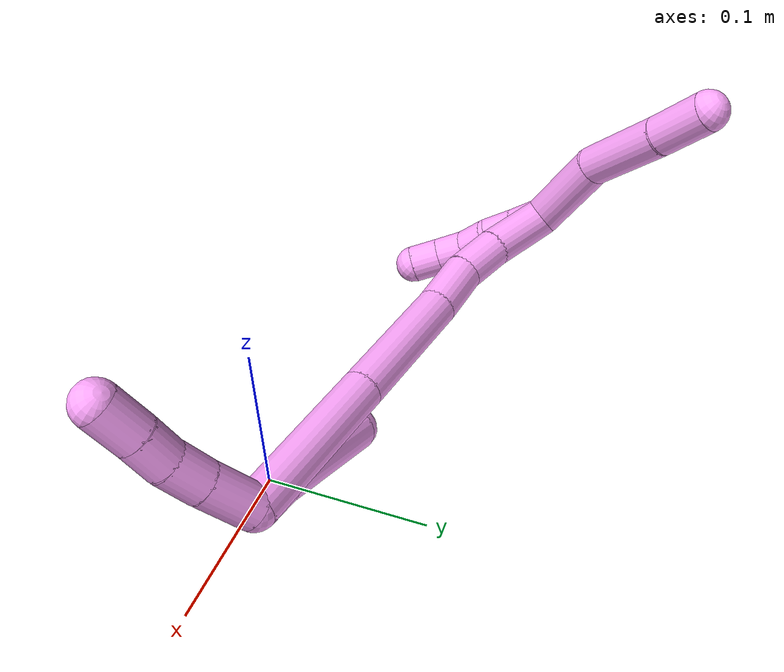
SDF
<sdf version="1.7">
 <world name="default">
  <model name="photoneo_s_sensor">
   <static>1</static>
   <pose>0 0 2 1.57079 1.57079 3.14159</pose>
   <link name="link">
    <inertial><mass>0.1</mass></inertial>
    <sensor name="sensor" type="depth">
     <update_rate>30</update_rate>
     <camera>
      <horizontal_fov>1.22</horizontal_fov>
      <image><width>1920</width><height>1200</height><format>B8G8R8</format></image>
      <clip><near>0.1</near><far>4</far></clip>
      <depth_camera><output>points</output></depth_camera>
     </camera>
     <plugin name="camera_plugin" filename="libgazebo_ros_depth_camera.so">
      <baseline>0.2</baseline>
      <alwaysOn>1</alwaysOn>
      <updateRate>0.0</updateRate>
      <cameraName>camera_ir</cameraName>
      <imageTopicName>/camera/color/image_raw</imageTopicName>
      <cameraInfoTopicName>/camera/color/camera_info</cameraInfoTopicName>
      <depthImageTopicName>/camera/depth/image_raw</depthImageTopicName>
      <depthImageCameraInfoTopicName>/camera/depth/camera_info</depthImageCameraInfoTopicName>
      <pointCloudTopicName>/camera/depth/points</pointCloudTopicName>
      <frameName>fr_optical</frameName>
      <pointCloudCutoff>0.1</pointCloudCutoff>
      <pointCloudCutoffMax>2.0</pointCloudCutoffMax>
      <distortionK1>0</distortionK1>
      <distortionK2>0</distortionK2>
      <distortionK3>0</distortionK3>
      <distortionT1>0</distortionT1>
      <distortionT2>0</distortionT2>
      <CxPrime>0</CxPrime>
      <Cx>0</Cx>
      <Cy>0</Cy>
      <focalLength>0</focalLength>
      <hackBaseline>0</hackBaseline>
     </plugin>
    </sensor>
   </link>
  </model>
  <model name="bin">
   <static>1</static>
   <link name="bottom">
    <collision name="collision-bottom">
     <pose>0 0 -0.01 0 -0 0</pose>
     <geometry><box><size>0.8 0.6 0.02</size></box></geometry>
     <surface>
      <friction><ode><mu>100</mu><mu2>100</mu2></ode></friction>
      <contact><collide_bitmask>65535</collide_bitmask></contact>
     </surface>
    </collision>
   </link>
   <link name="west_wall">
    <collision name="collision-west_wall">
     <pose>-0.41 0 0.1 0 -0 0</pose>
     <geometry><box><size>0.02 0.6 0.2</size></box></geometry>
     <surface>
      <friction><ode><mu>100</mu><mu2>100</mu2></ode></friction>
      <contact><collide_bitmask>65535</collide_bitmask></contact>
     </surface>
    </collision>
   </link>
   <link name="east_wall">
    <collision name="collision-east_wall">
     <pose>0.41 0 0.1 0 -0 0</pose>
     <geometry><box><size>0.02 0.6 0.2</size></box></geometry>
     <surface>
      <friction><ode><mu>100</mu><mu2>100</mu2></ode></friction>
      <contact><collide_bitmask>65535</collide_bitmask></contact>
     </surface>
    </collision>
   </link>
   <link name="south_wall">
    <collision name="collision-south_wall">
     <pose>0 -0.31 0.1 0 -0 0</pose>
     <geometry><box><size>0.8 0.02 0.2</size></box></geometry>
     <surface>
      <friction><ode><mu>100</mu><mu2>100</mu2></ode></friction>
      <contact><collide_bitmask>65535</collide_bitmask></contact>
     </surface>
    </collision>
   </link>
   <link name="north_wall">
    <collision name="collision-north_wall">
     <pose>0 0.31 0.1 0 -0 0</pose>
     <geometry><box><size>0.8 0.02 0.2</size></box></geometry>
     <surface>
      <friction><ode><mu>100</mu><mu2>100</mu2></ode></friction>
      <contact><collide_bitmask>65535</collide_bitmask></contact>
     </surface>
    </collision>
   </link>
  </model>
  <model name="4">
   <static>0</static>
   <link name="4">
    <collision name="collision-cylinder-e_1_2_8">
     <pose>-0.000261 -9.6e-05 0.029581 0.003254 -0.008826 -1.4e-05</pose>
     <geometry><cylinder><radius>0.0125</radius><length>0.059165</length></cylinder></geometry>
     <surface>
      <friction><ode><mu>1.16</mu><mu2>1.16</mu2><slip1>0</slip1><slip2>0</slip2></ode></friction>
      <contact><ode><kp>1e+06</kp><kd>1</kd><max_vel>0</max_vel><min_depth>0.001</min_depth></ode></contact>
     </surface>
    </collision>
    <visual name="visual-cylinder-e_1_2_8">
     <pose>-0.000261 -9.6e-05 0.029581 0.003254 -0.008826 -1.4e-05</pose>
     <geometry><cylinder><radius>0.0125</radius><length>0.059165</length></cylinder></geometry>
     <material><ambient>1 0.65098 0.996078 1</ambient></material>
    </visual>
    <collision name="collision-cylinder-e_2_8_9">
     <pose>0.001993 0.007456 0.085998 -0.277656 0.089906 -0.012571</pose>
     <geometry><cylinder><radius>0.0125</radius><length>0.056036</length></cylinder></geometry>
     <surface>
      <friction><ode><mu>1.16</mu><mu2>1.16</mu2><slip1>0</slip1><slip2>0</slip2></ode></friction>
      <contact><ode><kp>1e+06</kp><kd>1</kd><max_vel>0</max_vel><min_depth>0.001</min_depth></ode></contact>
     </surface>
    </collision>
    <visual name="visual-cylinder-e_2_8_9">
     <pose>0.001993 0.007456 0.085998 -0.277656 0.089906 -0.012571</pose>
     <geometry><cylinder><radius>0.0125</radius><length>0.056036</length></cylinder></geometry>
     <material><ambient>1 0.65098 0.996078 1</ambient></material>
    </visual>
    <collision name="collision-cylinder-e_3_9_6">
     <pose>0.004448 0.019481 0.129675 -0.254205 -0.003488 0.000446</pose>
     <geometry><cylinder><radius>0.0125</radius><length>0.034799</length></cylinder></geometry>
     <surface>
      <friction><ode><mu>1.16</mu><mu2>1.16</mu2><slip1>0</slip1><slip2>0</slip2></ode></friction>
      <contact><ode><kp>1e+06</kp><kd>1</kd><max_vel>0</max_vel><min_depth>0.001</min_depth></ode></contact>
     </surface>
    </collision>
    <visual name="visual-cylinder-e_3_9_6">
     <pose>0.004448 0.019481 0.129675 -0.254205 -0.003488 0.000446</pose>
     <geometry><cylinder><radius>0.0125</radius><length>0.034799</length></cylinder></geometry>
     <material><ambient>1 0.65098 0.996078 1</ambient></material>
    </visual>
    <collision name="collision-cylinder-e_1_2_10">
     <pose>0.003826 -0.003535 -0.008536 2.74898 0.392606 1.57077</pose>
     <geometry><cylinder><radius>0.0125</radius><length>0.02</length></cylinder></geometry>
     <surface>
      <friction><ode><mu>1.16</mu><mu2>1.16</mu2><slip1>0</slip1><slip2>0</slip2></ode></friction>
      <contact><ode><kp>1e+06</kp><kd>1</kd><max_vel>0</max_vel><min_depth>0.001</min_depth></ode></contact>
     </surface>
    </collision>
    <visual name="visual-cylinder-e_1_2_10">
     <pose>0.003826 -0.003535 -0.008536 2.74898 0.392606 1.57077</pose>
     <geometry><cylinder><radius>0.0125</radius><length>0.02</length></cylinder></geometry>
     <material><ambient>1 0.65098 0.996078 1</ambient></material>
    </visual>
    <collision name="collision-cylinder-e_2_10_11">
     <pose>0.012136 -0.010981 -0.02511 2.68876 0.464977 1.5982</pose>
     <geometry><cylinder><radius>0.0125</radius><length>0.02</length></cylinder></geometry>
     <surface>
      <friction><ode><mu>1.16</mu><mu2>1.16</mu2><slip1>0</slip1><slip2>0</slip2></ode></friction>
      <contact><ode><kp>1e+06</kp><kd>1</kd><max_vel>0</max_vel><min_depth>0.001</min_depth></ode></contact>
     </surface>
    </collision>
    <visual name="visual-cylinder-e_2_10_11">
     <pose>0.012136 -0.010981 -0.02511 2.68876 0.464977 1.5982</pose>
     <geometry><cylinder><radius>0.0125</radius><length>0.02</length></cylinder></geometry>
     <material><ambient>1 0.65098 0.996078 1</ambient></material>
    </visual>
    <collision name="collision-cylinder-e_3_11_12">
     <pose>0.018872 -0.017392 -0.042564 2.88198 0.227106 1.43611</pose>
     <geometry><cylinder><radius>0.0125</radius><length>0.02</length></cylinder></geometry>
     <surface>
      <friction><ode><mu>1.16</mu><mu2>1.16</mu2><slip1>0</slip1><slip2>0</slip2></ode></friction>
      <contact><ode><kp>1e+06</kp><kd>1</kd><max_vel>0</max_vel><min_depth>0.001</min_depth></ode></contact>
     </surface>
    </collision>
    <visual name="visual-cylinder-e_3_11_12">
     <pose>0.018872 -0.017392 -0.042564 2.88198 0.227106 1.43611</pose>
     <geometry><cylinder><radius>0.0125</radius><length>0.02</length></cylinder></geometry>
     <material><ambient>1 0.65098 0.996078 1</ambient></material>
    </visual>
    <collision name="collision-cylinder-e_4_12_13">
     <pose>0.025427 -0.024217 -0.059904 2.64209 0.444871 1.45084</pose>
     <geometry><cylinder><radius>0.0125</radius><length>0.02</length></cylinder></geometry>
     <surface>
      <friction><ode><mu>1.16</mu><mu2>1.16</mu2><slip1>0</slip1><slip2>0</slip2></ode></friction>
      <contact><ode><kp>1e+06</kp><kd>1</kd><max_vel>0</max_vel><min_depth>0.001</min_depth></ode></contact>
     </surface>
    </collision>
    <visual name="visual-cylinder-e_4_12_13">
     <pose>0.025427 -0.024217 -0.059904 2.64209 0.444871 1.45084</pose>
     <geometry><cylinder><radius>0.0125</radius><length>0.02</length></cylinder></geometry>
     <material><ambient>1 0.65098 0.996078 1</ambient></material>
    </visual>
    <collision name="collision-cylinder-e_5_13_5">
     <pose>0.035678 -0.032933 -0.074561 2.5635 0.637048 1.67397</pose>
     <geometry><cylinder><radius>0.0125</radius><length>0.02</length></cylinder></geometry>
     <surface>
      <friction><ode><mu>1.16</mu><mu2>1.16</mu2><slip1>0</slip1><slip2>0</slip2></ode></friction>
      <contact><ode><kp>1e+06</kp><kd>1</kd><max_vel>0</max_vel><min_depth>0.001</min_depth></ode></contact>
     </surface>
    </collision>
    <visual name="visual-cylinder-e_5_13_5">
     <pose>0.035678 -0.032933 -0.074561 2.5635 0.637048 1.67397</pose>
     <geometry><cylinder><radius>0.0125</radius><length>0.02</length></cylinder></geometry>
     <material><ambient>1 0.65098 0.996078 1</ambient></material>
    </visual>
    <collision name="collision-cylinder-e_1_2_14">
     <pose>0.022306 -0.002567 -0.005411 2.69856 1.30848 2.57033</pose>
     <geometry><cylinder><radius>0.0125</radius><length>0.046192</length></cylinder></geometry>
     <surface>
      <friction><ode><mu>1.16</mu><mu2>1.16</mu2><slip1>0</slip1><slip2>0</slip2></ode></friction>
      <contact><ode><kp>1e+06</kp><kd>1</kd><max_vel>0</max_vel><min_depth>0.001</min_depth></ode></contact>
     </surface>
    </collision>
    <visual name="visual-cylinder-e_1_2_14">
     <pose>0.022306 -0.002567 -0.005411 2.69856 1.30848 2.57033</pose>
     <geometry><cylinder><radius>0.0125</radius><length>0.046192</length></cylinder></geometry>
     <material><ambient>1 0.65098 0.996078 1</ambient></material>
    </visual>
    <collision name="collision-cylinder-e_2_14_15">
     <pose>0.059463 -0.005469 -0.013778 3.02907 1.37307 3.00436</pose>
     <geometry><cylinder><radius>0.0125</radius><length>0.030292</length></cylinder></geometry>
     <surface>
      <friction><ode><mu>1.16</mu><mu2>1.16</mu2><slip1>0</slip1><slip2>0</slip2></ode></friction>
      <contact><ode><kp>1e+06</kp><kd>1</kd><max_vel>0</max_vel><min_depth>0.001</min_depth></ode></contact>
     </surface>
    </collision>
    <visual name="visual-cylinder-e_2_14_15">
     <pose>0.059463 -0.005469 -0.013778 3.02907 1.37307 3.00436</pose>
     <geometry><cylinder><radius>0.0125</radius><length>0.030292</length></cylinder></geometry>
     <material><ambient>1 0.65098 0.996078 1</ambient></material>
    </visual>
    <collision name="collision-cylinder-e_3_15_16">
     <pose>0.092187 -0.002788 -0.017524 -1.82672 1.39818 -1.65598</pose>
     <geometry><cylinder><radius>0.0125</radius><length>0.036285</length></cylinder></geometry>
     <surface>
      <friction><ode><mu>1.16</mu><mu2>1.16</mu2><slip1>0</slip1><slip2>0</slip2></ode></friction>
      <contact><ode><kp>1e+06</kp><kd>1</kd><max_vel>0</max_vel><min_depth>0.001</min_depth></ode></contact>
     </surface>
    </collision>
    <visual name="visual-cylinder-e_3_15_16">
     <pose>0.092187 -0.002788 -0.017524 -1.82672 1.39818 -1.65598</pose>
     <geometry><cylinder><radius>0.0125</radius><length>0.036285</length></cylinder></geometry>
     <material><ambient>1 0.65098 0.996078 1</ambient></material>
    </visual>
    <collision name="collision-cylinder-e_4_16_17">
     <pose>0.153164 0.004815 -0.017135 -1.31951 1.46132 -1.2149</pose>
     <geometry><cylinder><radius>0.0125</radius><length>0.086729</length></cylinder></geometry>
     <surface>
      <friction><ode><mu>1.16</mu><mu2>1.16</mu2><slip1>0</slip1><slip2>0</slip2></ode></friction>
      <contact><ode><kp>1e+06</kp><kd>1</kd><max_vel>0</max_vel><min_depth>0.001</min_depth></ode></contact>
     </surface>
    </collision>
    <visual name="visual-cylinder-e_4_16_17">
     <pose>0.153164 0.004815 -0.017135 -1.31951 1.46132 -1.2149</pose>
     <geometry><cylinder><radius>0.0125</radius><length>0.086729</length></cylinder></geometry>
     <material><ambient>1 0.65098 0.996078 1</ambient></material>
    </visual>
    <collision name="collision-cylinder-e_5_17_1">
     <pose>0.246226 0.014612 -0.014409 -1.28189 1.46246 -1.17962</pose>
     <geometry><cylinder><radius>0.0125</radius><length>0.100502</length></cylinder></geometry>
     <surface>
      <friction><ode><mu>1.16</mu><mu2>1.16</mu2><slip1>0</slip1><slip2>0</slip2></ode></friction>
      <contact><ode><kp>1e+06</kp><kd>1</kd><max_vel>0</max_vel><min_depth>0.001</min_depth></ode></contact>
     </surface>
    </collision>
    <visual name="visual-cylinder-e_5_17_1">
     <pose>0.246226 0.014612 -0.014409 -1.28189 1.46246 -1.17962</pose>
     <geometry><cylinder><radius>0.0125</radius><length>0.100502</length></cylinder></geometry>
     <material><ambient>1 0.65098 0.996078 1</ambient></material>
    </visual>
    <collision name="collision-cylinder-e_1_1_18">
     <pose>0.30476 0.00703 -0.007581 1.17932 0.554935 0.376602</pose>
     <geometry><cylinder><radius>0.0125</radius><length>0.03256</length></cylinder></geometry>
     <surface>
      <friction><ode><mu>1.16</mu><mu2>1.16</mu2><slip1>0</slip1><slip2>0</slip2></ode></friction>
      <contact><ode><kp>1e+06</kp><kd>1</kd><max_vel>0</max_vel><min_depth>0.001</min_depth></ode></contact>
     </surface>
    </collision>
    <visual name="visual-cylinder-e_1_1_18">
     <pose>0.30476 0.00703 -0.007581 1.17932 0.554935 0.376602</pose>
     <geometry><cylinder><radius>0.0125</radius><length>0.03256</length></cylinder></geometry>
     <material><ambient>1 0.65098 0.996078 1</ambient></material>
    </visual>
    <collision name="collision-cylinder-e_2_18_19">
     <pose>0.318639 -0.014712 0.001621 1.15778 0.496959 0.328668</pose>
     <geometry><cylinder><radius>0.0125</radius><length>0.022238</length></cylinder></geometry>
     <surface>
      <friction><ode><mu>1.16</mu><mu2>1.16</mu2><slip1>0</slip1><slip2>0</slip2></ode></friction>
      <contact><ode><kp>1e+06</kp><kd>1</kd><max_vel>0</max_vel><min_depth>0.001</min_depth></ode></contact>
     </surface>
    </collision>
    <visual name="visual-cylinder-e_2_18_19">
     <pose>0.318639 -0.014712 0.001621 1.15778 0.496959 0.328668</pose>
     <geometry><cylinder><radius>0.0125</radius><length>0.022238</length></cylinder></geometry>
     <material><ambient>1 0.65098 0.996078 1</ambient></material>
    </visual>
    <collision name="collision-cylinder-e_3_19_20">
     <pose>0.327506 -0.032065 0.010224 1.06252 0.355106 0.210109</pose>
     <geometry><cylinder><radius>0.0125</radius><length>0.020512</length></cylinder></geometry>
     <surface>
      <friction><ode><mu>1.16</mu><mu2>1.16</mu2><slip1>0</slip1><slip2>0</slip2></ode></friction>
      <contact><ode><kp>1e+06</kp><kd>1</kd><max_vel>0</max_vel><min_depth>0.001</min_depth></ode></contact>
     </surface>
    </collision>
    <visual name="visual-cylinder-e_3_19_20">
     <pose>0.327506 -0.032065 0.010224 1.06252 0.355106 0.210109</pose>
     <geometry><cylinder><radius>0.0125</radius><length>0.020512</length></cylinder></geometry>
     <material><ambient>1 0.65098 0.996078 1</ambient></material>
    </visual>
    <collision name="collision-cylinder-e_4_20_4">
     <pose>0.335671 -0.050743 0.019966 1.11317 0.381774 0.239319</pose>
     <geometry><cylinder><radius>0.0125</radius><length>0.02469</length></cylinder></geometry>
     <surface>
      <friction><ode><mu>1.16</mu><mu2>1.16</mu2><slip1>0</slip1><slip2>0</slip2></ode></friction>
      <contact><ode><kp>1e+06</kp><kd>1</kd><max_vel>0</max_vel><min_depth>0.001</min_depth></ode></contact>
     </surface>
    </collision>
    <visual name="visual-cylinder-e_4_20_4">
     <pose>0.335671 -0.050743 0.019966 1.11317 0.381774 0.239319</pose>
     <geometry><cylinder><radius>0.0125</radius><length>0.02469</length></cylinder></geometry>
     <material><ambient>1 0.65098 0.996078 1</ambient></material>
    </visual>
    <collision name="collision-cylinder-e_1_1_21">
     <pose>0.284669 0.01911 -0.01595 2.91561 -1.30215 -2.8459</pose>
     <geometry><cylinder><radius>0.0125</radius><length>0.023882</length></cylinder></geometry>
     <surface>
      <friction><ode><mu>1.16</mu><mu2>1.16</mu2><slip1>0</slip1><slip2>0</slip2></ode></friction>
      <contact><ode><kp>1e+06</kp><kd>1</kd><max_vel>0</max_vel><min_depth>0.001</min_depth></ode></contact>
     </surface>
    </collision>
    <visual name="visual-cylinder-e_1_1_21">
     <pose>0.284669 0.01911 -0.01595 2.91561 -1.30215 -2.8459</pose>
     <geometry><cylinder><radius>0.0125</radius><length>0.023882</length></cylinder></geometry>
     <material><ambient>1 0.65098 0.996078 1</ambient></material>
    </visual>
    <collision name="collision-cylinder-e_2_21_3">
     <pose>0.236736 0.020857 -0.029808 -2.9173 -1.27632 2.84021</pose>
     <geometry><cylinder><radius>0.0125</radius><length>0.076118</length></cylinder></geometry>
     <surface>
      <friction><ode><mu>1.16</mu><mu2>1.16</mu2><slip1>0</slip1><slip2>0</slip2></ode></friction>
      <contact><ode><kp>1e+06</kp><kd>1</kd><max_vel>0</max_vel><min_depth>0.001</min_depth></ode></contact>
     </surface>
    </collision>
    <visual name="visual-cylinder-e_2_21_3">
     <pose>0.236736 0.020857 -0.029808 -2.9173 -1.27632 2.84021</pose>
     <geometry><cylinder><radius>0.0125</radius><length>0.076118</length></cylinder></geometry>
     <material><ambient>1 0.65098 0.996078 1</ambient></material>
    </visual>
    <collision name="collision-sphere-3">
     <pose>0.200315 0.023314 -0.040577 0 -0 0</pose>
     <geometry><sphere><radius>0.0125</radius></sphere></geometry>
     <surface>
      <friction><ode><mu>1.16</mu><mu2>1.16</mu2><slip1>0</slip1><slip2>0</slip2></ode></friction>
      <contact><ode><kp>1e+06</kp><kd>1</kd><max_vel>0</max_vel><min_depth>0.001</min_depth></ode></contact>
     </surface>
    </collision>
    <visual name="visual-sphere-3">
     <pose>0.200315 0.023314 -0.040577 0 -0 0</pose>
     <geometry><sphere><radius>0.0125</radius></sphere></geometry>
     <material><ambient>1 0.65098 0.996078 1</ambient></material>
    </visual>
    <collision name="collision-sphere-21">
     <pose>0.273157 0.0184 -0.019038 0 -0 0</pose>
     <geometry><sphere><radius>0.0125</radius></sphere></geometry>
     <surface>
      <friction><ode><mu>1.16</mu><mu2>1.16</mu2><slip1>0</slip1><slip2>0</slip2></ode></friction>
      <contact><ode><kp>1e+06</kp><kd>1</kd><max_vel>0</max_vel><min_depth>0.001</min_depth></ode></contact>
     </surface>
    </collision>
    <visual name="visual-sphere-21">
     <pose>0.273157 0.0184 -0.019038 0 -0 0</pose>
     <geometry><sphere><radius>0.0125</radius></sphere></geometry>
     <material><ambient>1 0.65098 0.996078 1</ambient></material>
    </visual>
    <collision name="collision-sphere-4">
     <pose>0.34027 -0.06102 0.025027 0 -0 0</pose>
     <geometry><sphere><radius>0.0125</radius></sphere></geometry>
     <surface>
      <friction><ode><mu>1.16</mu><mu2>1.16</mu2><slip1>0</slip1><slip2>0</slip2></ode></friction>
      <contact><ode><kp>1e+06</kp><kd>1</kd><max_vel>0</max_vel><min_depth>0.001</min_depth></ode></contact>
     </surface>
    </collision>
    <visual name="visual-sphere-4">
     <pose>0.34027 -0.06102 0.025027 0 -0 0</pose>
     <geometry><sphere><radius>0.0125</radius></sphere></geometry>
     <material><ambient>1 0.65098 0.996078 1</ambient></material>
    </visual>
    <collision name="collision-sphere-20">
     <pose>0.331071 -0.040466 0.014904 0 -0 0</pose>
     <geometry><sphere><radius>0.0125</radius></sphere></geometry>
     <surface>
      <friction><ode><mu>1.16</mu><mu2>1.16</mu2><slip1>0</slip1><slip2>0</slip2></ode></friction>
      <contact><ode><kp>1e+06</kp><kd>1</kd><max_vel>0</max_vel><min_depth>0.001</min_depth></ode></contact>
     </surface>
    </collision>
    <visual name="visual-sphere-20">
     <pose>0.331071 -0.040466 0.014904 0 -0 0</pose>
     <geometry><sphere><radius>0.0125</radius></sphere></geometry>
     <material><ambient>1 0.65098 0.996078 1</ambient></material>
    </visual>
    <collision name="collision-sphere-11">
     <pose>0.01662 -0.014891 -0.033147 0 -0 0</pose>
     <geometry><sphere><radius>0.0125</radius></sphere></geometry>
     <surface>
      <friction><ode><mu>1.16</mu><mu2>1.16</mu2><slip1>0</slip1><slip2>0</slip2></ode></friction>
      <contact><ode><kp>1e+06</kp><kd>1</kd><max_vel>0</max_vel><min_depth>0.001</min_depth></ode></contact>
     </surface>
    </collision>
    <visual name="visual-sphere-11">
     <pose>0.01662 -0.014891 -0.033147 0 -0 0</pose>
     <geometry><sphere><radius>0.0125</radius></sphere></geometry>
     <material><ambient>1 0.65098 0.996078 1</ambient></material>
    </visual>
    <collision name="collision-sphere-10">
     <pose>0.007652 -0.00707 -0.017072 0 -0 0</pose>
     <geometry><sphere><radius>0.0125</radius></sphere></geometry>
     <surface>
      <friction><ode><mu>1.16</mu><mu2>1.16</mu2><slip1>0</slip1><slip2>0</slip2></ode></friction>
      <contact><ode><kp>1e+06</kp><kd>1</kd><max_vel>0</max_vel><min_depth>0.001</min_depth></ode></contact>
     </surface>
    </collision>
    <visual name="visual-sphere-10">
     <pose>0.007652 -0.00707 -0.017072 0 -0 0</pose>
     <geometry><sphere><radius>0.0125</radius></sphere></geometry>
     <material><ambient>1 0.65098 0.996078 1</ambient></material>
    </visual>
    <collision name="collision-sphere-6">
     <pose>0.004388 0.023856 0.146515 0 -0 0</pose>
     <geometry><sphere><radius>0.0125</radius></sphere></geometry>
     <surface>
      <friction><ode><mu>1.16</mu><mu2>1.16</mu2><slip1>0</slip1><slip2>0</slip2></ode></friction>
      <contact><ode><kp>1e+06</kp><kd>1</kd><max_vel>0</max_vel><min_depth>0.001</min_depth></ode></contact>
     </surface>
    </collision>
    <visual name="visual-sphere-6">
     <pose>0.004388 0.023856 0.146515 0 -0 0</pose>
     <geometry><sphere><radius>0.0125</radius></sphere></geometry>
     <material><ambient>1 0.65098 0.996078 1</ambient></material>
    </visual>
    <collision name="collision-sphere-9">
     <pose>0.004509 0.015105 0.112835 0 -0 0</pose>
     <geometry><sphere><radius>0.0125</radius></sphere></geometry>
     <surface>
      <friction><ode><mu>1.16</mu><mu2>1.16</mu2><slip1>0</slip1><slip2>0</slip2></ode></friction>
      <contact><ode><kp>1e+06</kp><kd>1</kd><max_vel>0</max_vel><min_depth>0.001</min_depth></ode></contact>
     </surface>
    </collision>
    <visual name="visual-sphere-9">
     <pose>0.004509 0.015105 0.112835 0 -0 0</pose>
     <geometry><sphere><radius>0.0125</radius></sphere></geometry>
     <material><ambient>1 0.65098 0.996078 1</ambient></material>
    </visual>
    <collision name="collision-sphere-2">
     <geometry><sphere><radius>0.0125</radius></sphere></geometry>
     <surface>
      <friction><ode><mu>1.16</mu><mu2>1.16</mu2><slip1>0</slip1><slip2>0</slip2></ode></friction>
      <contact><ode><kp>1e+06</kp><kd>1</kd><max_vel>0</max_vel><min_depth>0.001</min_depth></ode></contact>
     </surface>
    </collision>
    <visual name="visual-sphere-2">
     <geometry><sphere><radius>0.0125</radius></sphere></geometry>
     <material><ambient>1 0.65098 0.996078 1</ambient></material>
    </visual>
    <collision name="collision-sphere-19">
     <pose>0.32394 -0.023665 0.005544 0 -0 0</pose>
     <geometry><sphere><radius>0.0125</radius></sphere></geometry>
     <surface>
      <friction><ode><mu>1.16</mu><mu2>1.16</mu2><slip1>0</slip1><slip2>0</slip2></ode></friction>
      <contact><ode><kp>1e+06</kp><kd>1</kd><max_vel>0</max_vel><min_depth>0.001</min_depth></ode></contact>
     </surface>
    </collision>
    <visual name="visual-sphere-19">
     <pose>0.32394 -0.023665 0.005544 0 -0 0</pose>
     <geometry><sphere><radius>0.0125</radius></sphere></geometry>
     <material><ambient>1 0.65098 0.996078 1</ambient></material>
    </visual>
    <collision name="collision-sphere-8">
     <pose>-0.000522 -0.000193 0.059162 0 -0 0</pose>
     <geometry><sphere><radius>0.0125</radius></sphere></geometry>
     <surface>
      <friction><ode><mu>1.16</mu><mu2>1.16</mu2><slip1>0</slip1><slip2>0</slip2></ode></friction>
      <contact><ode><kp>1e+06</kp><kd>1</kd><max_vel>0</max_vel><min_depth>0.001</min_depth></ode></contact>
     </surface>
    </collision>
    <visual name="visual-sphere-8">
     <pose>-0.000522 -0.000193 0.059162 0 -0 0</pose>
     <geometry><sphere><radius>0.0125</radius></sphere></geometry>
     <material><ambient>1 0.65098 0.996078 1</ambient></material>
    </visual>
    <collision name="collision-sphere-12">
     <pose>0.021123 -0.019894 -0.051981 0 -0 0</pose>
     <geometry><sphere><radius>0.0125</radius></sphere></geometry>
     <surface>
      <friction><ode><mu>1.16</mu><mu2>1.16</mu2><slip1>0</slip1><slip2>0</slip2></ode></friction>
      <contact><ode><kp>1e+06</kp><kd>1</kd><max_vel>0</max_vel><min_depth>0.001</min_depth></ode></contact>
     </surface>
    </collision>
    <visual name="visual-sphere-12">
     <pose>0.021123 -0.019894 -0.051981 0 -0 0</pose>
     <geometry><sphere><radius>0.0125</radius></sphere></geometry>
     <material><ambient>1 0.65098 0.996078 1</ambient></material>
    </visual>
    <collision name="collision-sphere-13">
     <pose>0.02973 -0.028541 -0.067828 0 -0 0</pose>
     <geometry><sphere><radius>0.0125</radius></sphere></geometry>
     <surface>
      <friction><ode><mu>1.16</mu><mu2>1.16</mu2><slip1>0</slip1><slip2>0</slip2></ode></friction>
      <contact><ode><kp>1e+06</kp><kd>1</kd><max_vel>0</max_vel><min_depth>0.001</min_depth></ode></contact>
     </surface>
    </collision>
    <visual name="visual-sphere-13">
     <pose>0.02973 -0.028541 -0.067828 0 -0 0</pose>
     <geometry><sphere><radius>0.0125</radius></sphere></geometry>
     <material><ambient>1 0.65098 0.996078 1</ambient></material>
    </visual>
    <collision name="collision-sphere-5">
     <pose>0.041627 -0.037326 -0.081293 0 -0 0</pose>
     <geometry><sphere><radius>0.0125</radius></sphere></geometry>
     <surface>
      <friction><ode><mu>1.16</mu><mu2>1.16</mu2><slip1>0</slip1><slip2>0</slip2></ode></friction>
      <contact><ode><kp>1e+06</kp><kd>1</kd><max_vel>0</max_vel><min_depth>0.001</min_depth></ode></contact>
     </surface>
    </collision>
    <visual name="visual-sphere-5">
     <pose>0.041627 -0.037326 -0.081293 0 -0 0</pose>
     <geometry><sphere><radius>0.0125</radius></sphere></geometry>
     <material><ambient>1 0.65098 0.996078 1</ambient></material>
    </visual>
    <collision name="collision-sphere-14">
     <pose>0.044612 -0.005135 -0.010822 0 -0 0</pose>
     <geometry><sphere><radius>0.0125</radius></sphere></geometry>
     <surface>
      <friction><ode><mu>1.16</mu><mu2>1.16</mu2><slip1>0</slip1><slip2>0</slip2></ode></friction>
      <contact><ode><kp>1e+06</kp><kd>1</kd><max_vel>0</max_vel><min_depth>0.001</min_depth></ode></contact>
     </surface>
    </collision>
    <visual name="visual-sphere-14">
     <pose>0.044612 -0.005135 -0.010822 0 -0 0</pose>
     <geometry><sphere><radius>0.0125</radius></sphere></geometry>
     <material><ambient>1 0.65098 0.996078 1</ambient></material>
    </visual>
    <collision name="collision-sphere-15">
     <pose>0.074314 -0.005803 -0.016735 0 -0 0</pose>
     <geometry><sphere><radius>0.0125</radius></sphere></geometry>
     <surface>
      <friction><ode><mu>1.16</mu><mu2>1.16</mu2><slip1>0</slip1><slip2>0</slip2></ode></friction>
      <contact><ode><kp>1e+06</kp><kd>1</kd><max_vel>0</max_vel><min_depth>0.001</min_depth></ode></contact>
     </surface>
    </collision>
    <visual name="visual-sphere-15">
     <pose>0.074314 -0.005803 -0.016735 0 -0 0</pose>
     <geometry><sphere><radius>0.0125</radius></sphere></geometry>
     <material><ambient>1 0.65098 0.996078 1</ambient></material>
    </visual>
    <collision name="collision-sphere-16">
     <pose>0.110059 0.000226 -0.018313 0 -0 0</pose>
     <geometry><sphere><radius>0.0125</radius></sphere></geometry>
     <surface>
      <friction><ode><mu>1.16</mu><mu2>1.16</mu2><slip1>0</slip1><slip2>0</slip2></ode></friction>
      <contact><ode><kp>1e+06</kp><kd>1</kd><max_vel>0</max_vel><min_depth>0.001</min_depth></ode></contact>
     </surface>
    </collision>
    <visual name="visual-sphere-16">
     <pose>0.110059 0.000226 -0.018313 0 -0 0</pose>
     <geometry><sphere><radius>0.0125</radius></sphere></geometry>
     <material><ambient>1 0.65098 0.996078 1</ambient></material>
    </visual>
    <collision name="collision-sphere-17">
     <pose>0.196269 0.009404 -0.015957 0 -0 0</pose>
     <geometry><sphere><radius>0.0125</radius></sphere></geometry>
     <surface>
      <friction><ode><mu>1.16</mu><mu2>1.16</mu2><slip1>0</slip1><slip2>0</slip2></ode></friction>
      <contact><ode><kp>1e+06</kp><kd>1</kd><max_vel>0</max_vel><min_depth>0.001</min_depth></ode></contact>
     </surface>
    </collision>
    <visual name="visual-sphere-17">
     <pose>0.196269 0.009404 -0.015957 0 -0 0</pose>
     <geometry><sphere><radius>0.0125</radius></sphere></geometry>
     <material><ambient>1 0.65098 0.996078 1</ambient></material>
    </visual>
    <collision name="collision-sphere-1">
     <pose>0.296182 0.01982 -0.012861 0 -0 0</pose>
     <geometry><sphere><radius>0.0125</radius></sphere></geometry>
     <surface>
      <friction><ode><mu>1.16</mu><mu2>1.16</mu2><slip1>0</slip1><slip2>0</slip2></ode></friction>
      <contact><ode><kp>1e+06</kp><kd>1</kd><max_vel>0</max_vel><min_depth>0.001</min_depth></ode></contact>
     </surface>
    </collision>
    <visual name="visual-sphere-1">
     <pose>0.296182 0.01982 -0.012861 0 -0 0</pose>
     <geometry><sphere><radius>0.0125</radius></sphere></geometry>
     <material><ambient>1 0.65098 0.996078 1</ambient></material>
    </visual>
    <collision name="collision-sphere-18">
     <pose>0.313337 -0.00576 -0.002302 0 -0 0</pose>
     <geometry><sphere><radius>0.0125</radius></sphere></geometry>
     <surface>
      <friction><ode><mu>1.16</mu><mu2>1.16</mu2><slip1>0</slip1><slip2>0</slip2></ode></friction>
      <contact><ode><kp>1e+06</kp><kd>1</kd><max_vel>0</max_vel><min_depth>0.001</min_depth></ode></contact>
     </surface>
    </collision>
    <visual name="visual-sphere-18">
     <pose>0.313337 -0.00576 -0.002302 0 -0 0</pose>
     <geometry><sphere><radius>0.0125</radius></sphere></geometry>
     <material><ambient>1 0.65098 0.996078 1</ambient></material>
    </visual>
    <inertial>
     <pose>0.137612 0.001126 0.000631 0 -0 0</pose>
     <mass>0.75</mass>
     <inertia>
      <ixx>6.2e-05</ixx>
      <ixy>0</ixy>
      <ixz>0</ixz>
      <iyy>0.000244</iyy>
      <iyz>0</iyz>
      <izz>-0.00014</izz>
     </inertia>
    </inertial>
   </link>
   <pose>-0.220619 0.102957 0.06909 -0.568675 -0.069585 -0.266871</pose>
  </model>
 </world>
</sdf>
